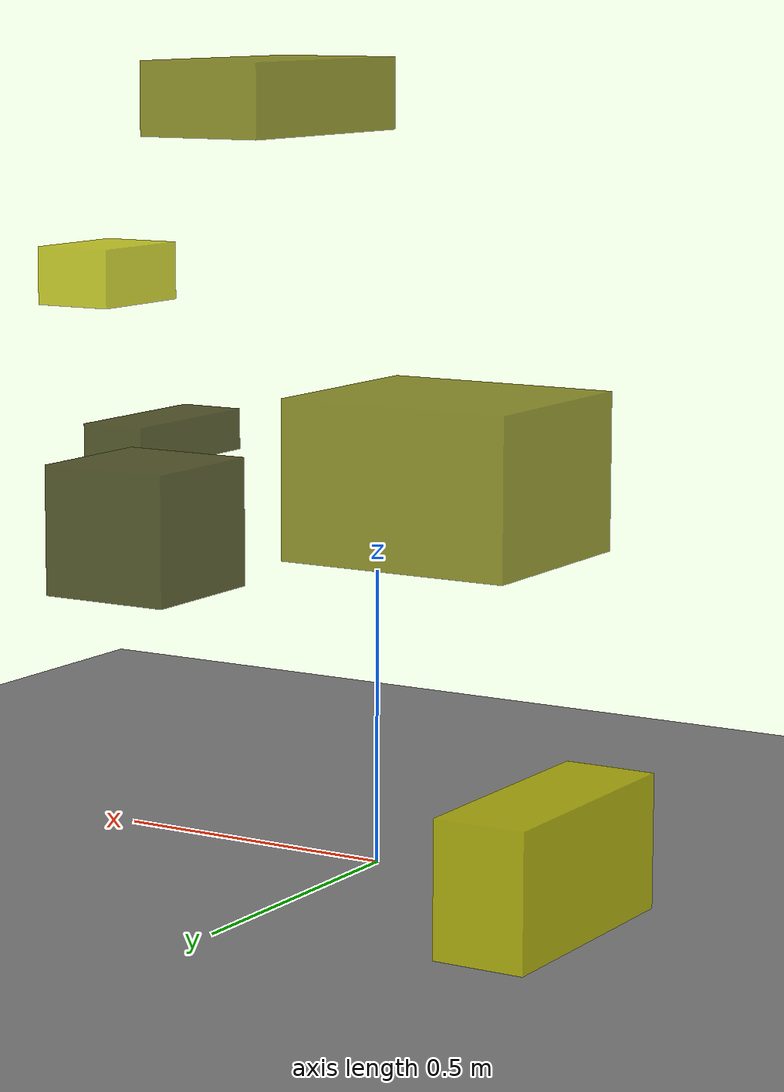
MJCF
<?xml version="1.0"?>
<mujoco model="obstacle_scene">
  <compiler angle="radian" coordinate="local"/>
  <option timestep="0.001" gravity="0 0 -9.81"/>

  <asset>
    <material name="obstacle_mat" rgba="0.8 0.8 0.0 0.8"/>
    <material name="ground_mat" rgba="0.5 0.5 0.5 1"/>
  </asset>

  <worldbody>
    <!-- Ground plane -->
    <geom name="ground" type="plane" size="3 3 0.1" material="ground_mat"/>

    <!-- Obstacles -->
    <body name="obstacle_0" pos="0.532643 -0.089031 0.514568">
      <geom name="obs_0" type="box" size="0.122806 0.130803 0.116422" rgba="0.2 0.2 0.0 0.8"/>
    </body>
    <body name="obstacle_1" pos="-0.399256 0.466847 0.752248">
      <geom name="obs_1" type="box" size="0.184486 0.164766 0.119862" rgba="0.5 0.5 0.0 0.8"/>
    </body>
    <body name="obstacle_2" pos="-0.590314 0.505570 0.199894">
      <geom name="obs_2" type="box" size="0.072775 0.202406 0.104160" rgba="0.8 0.8 0.0 0.8"/>
    </body>
    <body name="obstacle_3" pos="0.782155 -0.504531 0.606670">
      <geom name="obs_3" type="box" size="0.064517 0.167402 0.039530" rgba="0.2 0.2 0.0 0.8"/>
    </body>
    <body name="obstacle_4" pos="-0.100956 0.481460 1.301647">
      <geom name="obs_4" type="box" size="0.100694 0.193086 0.054888" rgba="0.5 0.5 0.0 0.8"/>
    </body>
    <body name="obstacle_5" pos="0.081513 0.646060 1.041657">
      <geom name="obs_5" type="box" size="0.061388 0.089144 0.042907" rgba="0.8 0.8 0.0 0.8"/>
    </body>
  </worldbody>
</mujoco>
